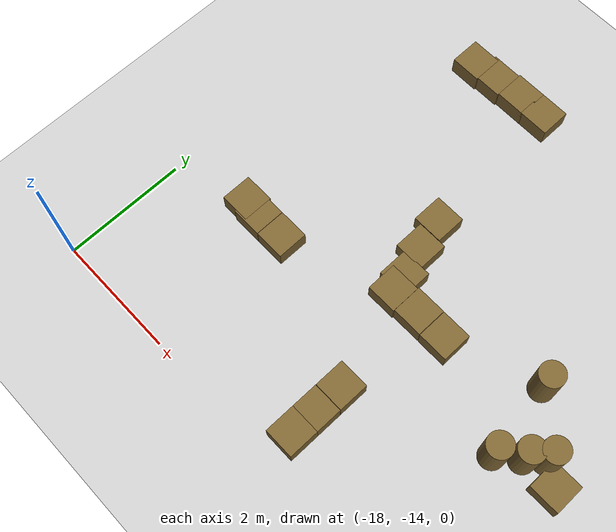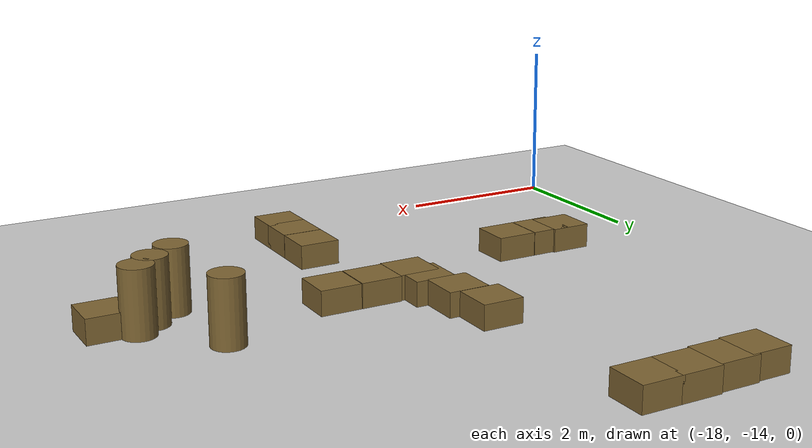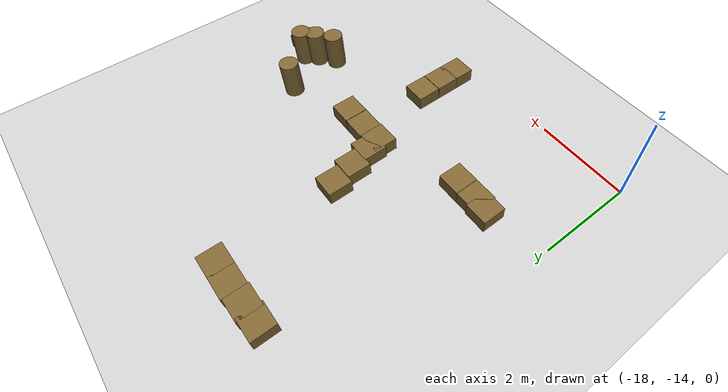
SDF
<sdf version="1.7">
 <world name="default">
  <model name="ground_plane">
   <static>1</static>
   <link name="link">
    <collision name="collision">
     <geometry><plane><normal>0 0 1</normal><size>100 100</size></plane></geometry>
     <surface><friction><ode><mu>100</mu><mu2>50</mu2></ode></friction></surface>
    </collision>
    <visual name="visual">
     <cast_shadows>0</cast_shadows>
     <geometry><plane><normal>0 0 1</normal><size>100 100</size></plane></geometry>
     <material>
      <script><uri>file://media/materials/scripts/gazebo.material</uri><name>Gazebo/Grey</name></script>
     </material>
    </visual>
   </link>
  </model>
  <model name="mini_box_clone_clone_3_clone_0_clone">
   <link name="link">
    <inertial>
     <mass>1</mass>
     <inertia>
      <ixx>0.166667</ixx>
      <ixy>0</ixy>
      <ixz>0</ixz>
      <iyy>0.166667</iyy>
      <iyz>0</iyz>
      <izz>0.166667</izz>
     </inertia>
    </inertial>
    <visual name="visual">
     <geometry><box><size>0.5 0.5 0.3</size></box></geometry>
     <material>
      <script><name>Gazebo/Grey</name><uri>file://media/materials/scripts/gazebo.material</uri></script>
      <shader type="vertex"><normal_map>__default__</normal_map></shader>
      <ambient>0.5 0.4 0.2 1</ambient>
      <diffuse>0.7 0.7 0.7 1</diffuse>
      <specular>0.01 0.01 0.01 1</specular>
      <emissive>0 0 0 1</emissive>
     </material>
    </visual>
    <collision name="collision">
     <geometry><box><size>0.5 0.5 0.3</size></box></geometry>
     <surface>
      <friction>
       <ode><mu>1</mu><mu2>1</mu2><fdir1>0 0 0</fdir1><slip1>0</slip1><slip2>0</slip2></ode>
       <torsional>
        <coefficient>1</coefficient>
        <patch_radius>0</patch_radius>
        <surface_radius>0</surface_radius>
        <use_patch_radius>1</use_patch_radius>
        <ode><slip>0</slip></ode>
       </torsional>
      </friction>
      <bounce><restitution_coefficient>0</restitution_coefficient><threshold>1e+06</threshold></bounce>
      <contact>
       <collide_without_contact>0</collide_without_contact>
       <collide_without_contact_bitmask>1</collide_without_contact_bitmask>
       <collide_bitmask>1</collide_bitmask>
       <ode>
        <soft_cfm>0</soft_cfm>
        <soft_erp>0.2</soft_erp>
        <kp>1e+13</kp>
        <kd>1</kd>
        <max_vel>0.01</max_vel>
        <min_depth>0</min_depth>
       </ode>
       <bullet>
        <split_impulse>1</split_impulse>
        <split_impulse_penetration_threshold>-0.01</split_impulse_penetration_threshold>
        <soft_cfm>0</soft_cfm>
        <soft_erp>0.2</soft_erp>
        <kp>1e+13</kp>
        <kd>1</kd>
       </bullet>
      </contact>
     </surface>
    </collision>
   </link>
   <static>1</static>
   <pose>-14.5289 -9.75447 0.15 0 -0 0</pose>
  </model>
  <model name="mini_box_clone_clone_3_clone_0_clone_0">
   <link name="link">
    <inertial>
     <mass>1</mass>
     <inertia>
      <ixx>0.166667</ixx>
      <ixy>0</ixy>
      <ixz>0</ixz>
      <iyy>0.166667</iyy>
      <iyz>0</iyz>
      <izz>0.166667</izz>
     </inertia>
    </inertial>
    <visual name="visual">
     <geometry><box><size>0.5 0.5 0.3</size></box></geometry>
     <material>
      <script><name>Gazebo/Grey</name><uri>file://media/materials/scripts/gazebo.material</uri></script>
      <shader type="vertex"><normal_map>__default__</normal_map></shader>
      <ambient>0.5 0.4 0.2 1</ambient>
      <diffuse>0.7 0.7 0.7 1</diffuse>
      <specular>0.01 0.01 0.01 1</specular>
      <emissive>0 0 0 1</emissive>
     </material>
    </visual>
    <collision name="collision">
     <geometry><box><size>0.5 0.5 0.3</size></box></geometry>
     <surface>
      <friction>
       <ode><mu>1</mu><mu2>1</mu2><fdir1>0 0 0</fdir1><slip1>0</slip1><slip2>0</slip2></ode>
       <torsional>
        <coefficient>1</coefficient>
        <patch_radius>0</patch_radius>
        <surface_radius>0</surface_radius>
        <use_patch_radius>1</use_patch_radius>
        <ode><slip>0</slip></ode>
       </torsional>
      </friction>
      <bounce><restitution_coefficient>0</restitution_coefficient><threshold>1e+06</threshold></bounce>
      <contact>
       <collide_without_contact>0</collide_without_contact>
       <collide_without_contact_bitmask>1</collide_without_contact_bitmask>
       <collide_bitmask>1</collide_bitmask>
       <ode>
        <soft_cfm>0</soft_cfm>
        <soft_erp>0.2</soft_erp>
        <kp>1e+13</kp>
        <kd>1</kd>
        <max_vel>0.01</max_vel>
        <min_depth>0</min_depth>
       </ode>
       <bullet>
        <split_impulse>1</split_impulse>
        <split_impulse_penetration_threshold>-0.01</split_impulse_penetration_threshold>
        <soft_cfm>0</soft_cfm>
        <soft_erp>0.2</soft_erp>
        <kp>1e+13</kp>
        <kd>1</kd>
       </bullet>
      </contact>
     </surface>
    </collision>
   </link>
   <static>1</static>
   <pose>-13.2069 -11.003 0.15 0 -0 0</pose>
  </model>
  <model name="mini_box_clone_clone_3_clone_0_clone_clone">
   <link name="link">
    <inertial>
     <mass>1</mass>
     <inertia>
      <ixx>0.166667</ixx>
      <ixy>0</ixy>
      <ixz>0</ixz>
      <iyy>0.166667</iyy>
      <iyz>0</iyz>
      <izz>0.166667</izz>
     </inertia>
    </inertial>
    <visual name="visual">
     <geometry><box><size>0.5 0.5 0.3</size></box></geometry>
     <material>
      <script><name>Gazebo/Grey</name><uri>file://media/materials/scripts/gazebo.material</uri></script>
      <shader type="vertex"><normal_map>__default__</normal_map></shader>
      <ambient>0.5 0.4 0.2 1</ambient>
      <diffuse>0.7 0.7 0.7 1</diffuse>
      <specular>0.01 0.01 0.01 1</specular>
      <emissive>0 0 0 1</emissive>
     </material>
    </visual>
    <collision name="collision">
     <geometry><box><size>0.5 0.5 0.3</size></box></geometry>
     <surface>
      <friction>
       <ode><mu>1</mu><mu2>1</mu2><fdir1>0 0 0</fdir1><slip1>0</slip1><slip2>0</slip2></ode>
       <torsional>
        <coefficient>1</coefficient>
        <patch_radius>0</patch_radius>
        <surface_radius>0</surface_radius>
        <use_patch_radius>1</use_patch_radius>
        <ode><slip>0</slip></ode>
       </torsional>
      </friction>
      <bounce><restitution_coefficient>0</restitution_coefficient><threshold>1e+06</threshold></bounce>
      <contact>
       <collide_without_contact>0</collide_without_contact>
       <collide_without_contact_bitmask>1</collide_without_contact_bitmask>
       <collide_bitmask>1</collide_bitmask>
       <ode>
        <soft_cfm>0</soft_cfm>
        <soft_erp>0.2</soft_erp>
        <kp>1e+13</kp>
        <kd>1</kd>
        <max_vel>0.01</max_vel>
        <min_depth>0</min_depth>
       </ode>
       <bullet>
        <split_impulse>1</split_impulse>
        <split_impulse_penetration_threshold>-0.01</split_impulse_penetration_threshold>
        <soft_cfm>0</soft_cfm>
        <soft_erp>0.2</soft_erp>
        <kp>1e+13</kp>
        <kd>1</kd>
       </bullet>
      </contact>
     </surface>
    </collision>
   </link>
   <static>1</static>
   <pose>-14.4092 -10.2616 0.15 0 -0 0</pose>
  </model>
  <model name="mini_box_clone_clone_3_clone_0_clone_clone_0">
   <link name="link">
    <inertial>
     <mass>1</mass>
     <inertia>
      <ixx>0.166667</ixx>
      <ixy>0</ixy>
      <ixz>0</ixz>
      <iyy>0.166667</iyy>
      <iyz>0</iyz>
      <izz>0.166667</izz>
     </inertia>
    </inertial>
    <visual name="visual">
     <geometry><box><size>0.5 0.5 0.3</size></box></geometry>
     <material>
      <script><name>Gazebo/Grey</name><uri>file://media/materials/scripts/gazebo.material</uri></script>
      <shader type="vertex"><normal_map>__default__</normal_map></shader>
      <ambient>0.5 0.4 0.2 1</ambient>
      <diffuse>0.7 0.7 0.7 1</diffuse>
      <specular>0.01 0.01 0.01 1</specular>
      <emissive>0 0 0 1</emissive>
     </material>
    </visual>
    <collision name="collision">
     <geometry><box><size>0.5 0.5 0.3</size></box></geometry>
     <surface>
      <friction>
       <ode><mu>1</mu><mu2>1</mu2><fdir1>0 0 0</fdir1><slip1>0</slip1><slip2>0</slip2></ode>
       <torsional>
        <coefficient>1</coefficient>
        <patch_radius>0</patch_radius>
        <surface_radius>0</surface_radius>
        <use_patch_radius>1</use_patch_radius>
        <ode><slip>0</slip></ode>
       </torsional>
      </friction>
      <bounce><restitution_coefficient>0</restitution_coefficient><threshold>1e+06</threshold></bounce>
      <contact>
       <collide_without_contact>0</collide_without_contact>
       <collide_without_contact_bitmask>1</collide_without_contact_bitmask>
       <collide_bitmask>1</collide_bitmask>
       <ode>
        <soft_cfm>0</soft_cfm>
        <soft_erp>0.2</soft_erp>
        <kp>1e+13</kp>
        <kd>1</kd>
        <max_vel>0.01</max_vel>
        <min_depth>0</min_depth>
       </ode>
       <bullet>
        <split_impulse>1</split_impulse>
        <split_impulse_penetration_threshold>-0.01</split_impulse_penetration_threshold>
        <soft_cfm>0</soft_cfm>
        <soft_erp>0.2</soft_erp>
        <kp>1e+13</kp>
        <kd>1</kd>
       </bullet>
      </contact>
     </surface>
    </collision>
   </link>
   <static>1</static>
   <pose>-14.2657 -10.7418 0.15 0 -0 0</pose>
  </model>
  <model name="mini_box_clone_clone_3_clone_0_clone_clone_1">
   <link name="link">
    <inertial>
     <mass>1</mass>
     <inertia>
      <ixx>0.166667</ixx>
      <ixy>0</ixy>
      <ixz>0</ixz>
      <iyy>0.166667</iyy>
      <iyz>0</iyz>
      <izz>0.166667</izz>
     </inertia>
    </inertial>
    <visual name="visual">
     <geometry><box><size>0.5 0.5 0.3</size></box></geometry>
     <material>
      <script><name>Gazebo/Grey</name><uri>file://media/materials/scripts/gazebo.material</uri></script>
      <shader type="vertex"><normal_map>__default__</normal_map></shader>
      <ambient>0.5 0.4 0.2 1</ambient>
      <diffuse>0.7 0.7 0.7 1</diffuse>
      <specular>0.01 0.01 0.01 1</specular>
      <emissive>0 0 0 1</emissive>
     </material>
    </visual>
    <collision name="collision">
     <geometry><box><size>0.5 0.5 0.3</size></box></geometry>
     <surface>
      <friction>
       <ode><mu>1</mu><mu2>1</mu2><fdir1>0 0 0</fdir1><slip1>0</slip1><slip2>0</slip2></ode>
       <torsional>
        <coefficient>1</coefficient>
        <patch_radius>0</patch_radius>
        <surface_radius>0</surface_radius>
        <use_patch_radius>1</use_patch_radius>
        <ode><slip>0</slip></ode>
       </torsional>
      </friction>
      <bounce><restitution_coefficient>0</restitution_coefficient><threshold>1e+06</threshold></bounce>
      <contact>
       <collide_without_contact>0</collide_without_contact>
       <collide_without_contact_bitmask>1</collide_without_contact_bitmask>
       <collide_bitmask>1</collide_bitmask>
       <ode>
        <soft_cfm>0</soft_cfm>
        <soft_erp>0.2</soft_erp>
        <kp>1e+13</kp>
        <kd>1</kd>
        <max_vel>0.01</max_vel>
        <min_depth>0</min_depth>
       </ode>
       <bullet>
        <split_impulse>1</split_impulse>
        <split_impulse_penetration_threshold>-0.01</split_impulse_penetration_threshold>
        <soft_cfm>0</soft_cfm>
        <soft_erp>0.2</soft_erp>
        <kp>1e+13</kp>
        <kd>1</kd>
       </bullet>
      </contact>
     </surface>
    </collision>
   </link>
   <static>1</static>
   <pose>-13.7158 -11.0017 0.15 0 -0 0</pose>
  </model>
  <model name="mini_cylinder_0_clone_0_clone_0_clone_11">
   <link name="link">
    <inertial>
     <mass>1</mass>
     <inertia><ixx>0.145833</ixx><ixy>0</ixy><ixz>0</ixz><iyy>0.145833</iyy><iyz>0</iyz><izz>0.125</izz></inertia>
    </inertial>
    <visual name="visual">
     <geometry><cylinder><radius>0.2</radius><length>0.8</length></cylinder></geometry>
     <material>
      <script><name>Gazebo/Grey</name><uri>file://media/materials/scripts/gazebo.material</uri></script>
      <shader type="vertex"><normal_map>__default__</normal_map></shader>
      <ambient>0.5 0.4 0.2 1</ambient>
      <diffuse>0.7 0.7 0.7 1</diffuse>
      <specular>0.01 0.01 0.01 1</specular>
      <emissive>0 0 0 1</emissive>
     </material>
    </visual>
    <collision name="collision">
     <geometry><cylinder><radius>0.2</radius><length>0.8</length></cylinder></geometry>
     <surface>
      <friction>
       <ode><mu>1</mu><mu2>1</mu2><fdir1>0 0 0</fdir1><slip1>0</slip1><slip2>0</slip2></ode>
       <torsional>
        <coefficient>1</coefficient>
        <patch_radius>0</patch_radius>
        <surface_radius>0</surface_radius>
        <use_patch_radius>1</use_patch_radius>
        <ode><slip>0</slip></ode>
       </torsional>
      </friction>
      <bounce><restitution_coefficient>0</restitution_coefficient><threshold>1e+06</threshold></bounce>
      <contact>
       <collide_without_contact>0</collide_without_contact>
       <collide_without_contact_bitmask>1</collide_without_contact_bitmask>
       <collide_bitmask>1</collide_bitmask>
       <ode>
        <soft_cfm>0</soft_cfm>
        <soft_erp>0.2</soft_erp>
        <kp>1e+13</kp>
        <kd>1</kd>
        <max_vel>0.01</max_vel>
        <min_depth>0</min_depth>
       </ode>
       <bullet>
        <split_impulse>1</split_impulse>
        <split_impulse_penetration_threshold>-0.01</split_impulse_penetration_threshold>
        <soft_cfm>0</soft_cfm>
        <soft_erp>0.2</soft_erp>
        <kp>1e+13</kp>
        <kd>1</kd>
       </bullet>
      </contact>
     </surface>
    </collision>
   </link>
   <static>1</static>
   <pose>-11.7615 -10.493 0.4 0 -0 0</pose>
  </model>
  <model name="mini_cylinder_0_clone_0_clone_0_clone_12">
   <link name="link">
    <inertial>
     <mass>1</mass>
     <inertia><ixx>0.145833</ixx><ixy>0</ixy><ixz>0</ixz><iyy>0.145833</iyy><iyz>0</iyz><izz>0.125</izz></inertia>
    </inertial>
    <visual name="visual">
     <geometry><cylinder><radius>0.2</radius><length>0.8</length></cylinder></geometry>
     <material>
      <script><name>Gazebo/Grey</name><uri>file://media/materials/scripts/gazebo.material</uri></script>
      <shader type="vertex"><normal_map>__default__</normal_map></shader>
      <ambient>0.5 0.4 0.2 1</ambient>
      <diffuse>0.7 0.7 0.7 1</diffuse>
      <specular>0.01 0.01 0.01 1</specular>
      <emissive>0 0 0 1</emissive>
     </material>
    </visual>
    <collision name="collision">
     <geometry><cylinder><radius>0.2</radius><length>0.8</length></cylinder></geometry>
     <surface>
      <friction>
       <ode><mu>1</mu><mu2>1</mu2><fdir1>0 0 0</fdir1><slip1>0</slip1><slip2>0</slip2></ode>
       <torsional>
        <coefficient>1</coefficient>
        <patch_radius>0</patch_radius>
        <surface_radius>0</surface_radius>
        <use_patch_radius>1</use_patch_radius>
        <ode><slip>0</slip></ode>
       </torsional>
      </friction>
      <bounce><restitution_coefficient>0</restitution_coefficient><threshold>1e+06</threshold></bounce>
      <contact>
       <collide_without_contact>0</collide_without_contact>
       <collide_without_contact_bitmask>1</collide_without_contact_bitmask>
       <collide_bitmask>1</collide_bitmask>
       <ode>
        <soft_cfm>0</soft_cfm>
        <soft_erp>0.2</soft_erp>
        <kp>1e+13</kp>
        <kd>1</kd>
        <max_vel>0.01</max_vel>
        <min_depth>0</min_depth>
       </ode>
       <bullet>
        <split_impulse>1</split_impulse>
        <split_impulse_penetration_threshold>-0.01</split_impulse_penetration_threshold>
        <soft_cfm>0</soft_cfm>
        <soft_erp>0.2</soft_erp>
        <kp>1e+13</kp>
        <kd>1</kd>
       </bullet>
      </contact>
     </surface>
    </collision>
   </link>
   <static>1</static>
   <pose>-11.27 -11.443 0.4 0 -0 0</pose>
  </model>
  <model name="mini_cylinder_0_clone_0_clone_0_clone_13">
   <link name="link">
    <inertial>
     <mass>1</mass>
     <inertia><ixx>0.145833</ixx><ixy>0</ixy><ixz>0</ixz><iyy>0.145833</iyy><iyz>0</iyz><izz>0.125</izz></inertia>
    </inertial>
    <visual name="visual">
     <geometry><cylinder><radius>0.2</radius><length>0.8</length></cylinder></geometry>
     <material>
      <script><name>Gazebo/Grey</name><uri>file://media/materials/scripts/gazebo.material</uri></script>
      <shader type="vertex"><normal_map>__default__</normal_map></shader>
      <ambient>0.5 0.4 0.2 1</ambient>
      <diffuse>0.7 0.7 0.7 1</diffuse>
      <specular>0.01 0.01 0.01 1</specular>
      <emissive>0 0 0 1</emissive>
     </material>
    </visual>
    <collision name="collision">
     <geometry><cylinder><radius>0.2</radius><length>0.8</length></cylinder></geometry>
     <surface>
      <friction>
       <ode><mu>1</mu><mu2>1</mu2><fdir1>0 0 0</fdir1><slip1>0</slip1><slip2>0</slip2></ode>
       <torsional>
        <coefficient>1</coefficient>
        <patch_radius>0</patch_radius>
        <surface_radius>0</surface_radius>
        <use_patch_radius>1</use_patch_radius>
        <ode><slip>0</slip></ode>
       </torsional>
      </friction>
      <bounce><restitution_coefficient>0</restitution_coefficient><threshold>1e+06</threshold></bounce>
      <contact>
       <collide_without_contact>0</collide_without_contact>
       <collide_without_contact_bitmask>1</collide_without_contact_bitmask>
       <collide_bitmask>1</collide_bitmask>
       <ode>
        <soft_cfm>0</soft_cfm>
        <soft_erp>0.2</soft_erp>
        <kp>1e+13</kp>
        <kd>1</kd>
        <max_vel>0.01</max_vel>
        <min_depth>0</min_depth>
       </ode>
       <bullet>
        <split_impulse>1</split_impulse>
        <split_impulse_penetration_threshold>-0.01</split_impulse_penetration_threshold>
        <soft_cfm>0</soft_cfm>
        <soft_erp>0.2</soft_erp>
        <kp>1e+13</kp>
        <kd>1</kd>
       </bullet>
      </contact>
     </surface>
    </collision>
   </link>
   <static>1</static>
   <pose>-11.0407 -11.2139 0.4 0 -0 0</pose>
  </model>
  <model name="mini_cylinder_0_clone_0_clone_0_clone_14">
   <link name="link">
    <inertial>
     <mass>1</mass>
     <inertia><ixx>0.145833</ixx><ixy>0</ixy><ixz>0</ixz><iyy>0.145833</iyy><iyz>0</iyz><izz>0.125</izz></inertia>
    </inertial>
    <visual name="visual">
     <geometry><cylinder><radius>0.2</radius><length>0.8</length></cylinder></geometry>
     <material>
      <script><name>Gazebo/Grey</name><uri>file://media/materials/scripts/gazebo.material</uri></script>
      <shader type="vertex"><normal_map>__default__</normal_map></shader>
      <ambient>0.5 0.4 0.2 1</ambient>
      <diffuse>0.7 0.7 0.7 1</diffuse>
      <specular>0.01 0.01 0.01 1</specular>
      <emissive>0 0 0 1</emissive>
     </material>
    </visual>
    <collision name="collision">
     <geometry><cylinder><radius>0.2</radius><length>0.8</length></cylinder></geometry>
     <surface>
      <friction>
       <ode><mu>1</mu><mu2>1</mu2><fdir1>0 0 0</fdir1><slip1>0</slip1><slip2>0</slip2></ode>
       <torsional>
        <coefficient>1</coefficient>
        <patch_radius>0</patch_radius>
        <surface_radius>0</surface_radius>
        <use_patch_radius>1</use_patch_radius>
        <ode><slip>0</slip></ode>
       </torsional>
      </friction>
      <bounce><restitution_coefficient>0</restitution_coefficient><threshold>1e+06</threshold></bounce>
      <contact>
       <collide_without_contact>0</collide_without_contact>
       <collide_without_contact_bitmask>1</collide_without_contact_bitmask>
       <collide_bitmask>1</collide_bitmask>
       <ode>
        <soft_cfm>0</soft_cfm>
        <soft_erp>0.2</soft_erp>
        <kp>1e+13</kp>
        <kd>1</kd>
        <max_vel>0.01</max_vel>
        <min_depth>0</min_depth>
       </ode>
       <bullet>
        <split_impulse>1</split_impulse>
        <split_impulse_penetration_threshold>-0.01</split_impulse_penetration_threshold>
        <soft_cfm>0</soft_cfm>
        <soft_erp>0.2</soft_erp>
        <kp>1e+13</kp>
        <kd>1</kd>
       </bullet>
      </contact>
     </surface>
    </collision>
   </link>
   <static>1</static>
   <pose>-11.5976 -11.7054 0.4 0 -0 0</pose>
  </model>
  <model name="mini_box_clone_clone_3_clone_0_clone_0_clone_10">
   <link name="link">
    <inertial>
     <mass>1</mass>
     <inertia>
      <ixx>0.166667</ixx>
      <ixy>0</ixy>
      <ixz>0</ixz>
      <iyy>0.166667</iyy>
      <iyz>0</iyz>
      <izz>0.166667</izz>
     </inertia>
    </inertial>
    <visual name="visual">
     <geometry><box><size>0.5 0.5 0.3</size></box></geometry>
     <material>
      <script><name>Gazebo/Grey</name><uri>file://media/materials/scripts/gazebo.material</uri></script>
      <shader type="vertex"><normal_map>__default__</normal_map></shader>
      <ambient>0.5 0.4 0.2 1</ambient>
      <diffuse>0.7 0.7 0.7 1</diffuse>
      <specular>0.01 0.01 0.01 1</specular>
      <emissive>0 0 0 1</emissive>
     </material>
    </visual>
    <collision name="collision">
     <geometry><box><size>0.5 0.5 0.3</size></box></geometry>
     <surface>
      <friction>
       <ode><mu>1</mu><mu2>1</mu2><fdir1>0 0 0</fdir1><slip1>0</slip1><slip2>0</slip2></ode>
       <torsional>
        <coefficient>1</coefficient>
        <patch_radius>0</patch_radius>
        <surface_radius>0</surface_radius>
        <use_patch_radius>1</use_patch_radius>
        <ode><slip>0</slip></ode>
       </torsional>
      </friction>
      <bounce><restitution_coefficient>0</restitution_coefficient><threshold>1e+06</threshold></bounce>
      <contact>
       <collide_without_contact>0</collide_without_contact>
       <collide_without_contact_bitmask>1</collide_without_contact_bitmask>
       <collide_bitmask>1</collide_bitmask>
       <ode>
        <soft_cfm>0</soft_cfm>
        <soft_erp>0.2</soft_erp>
        <kp>1e+13</kp>
        <kd>1</kd>
        <max_vel>0.01</max_vel>
        <min_depth>0</min_depth>
       </ode>
       <bullet>
        <split_impulse>1</split_impulse>
        <split_impulse_penetration_threshold>-0.01</split_impulse_penetration_threshold>
        <soft_cfm>0</soft_cfm>
        <soft_erp>0.2</soft_erp>
        <kp>1e+13</kp>
        <kd>1</kd>
       </bullet>
      </contact>
     </surface>
    </collision>
   </link>
   <static>1</static>
   <pose>-10.7131 -11.443 0.15 0 -0 0</pose>
  </model>
  <model name="mini_box_clone_clone_0_clone_55">
   <link name="link">
    <inertial>
     <mass>1</mass>
     <inertia>
      <ixx>0.166667</ixx>
      <ixy>0</ixy>
      <ixz>0</ixz>
      <iyy>0.166667</iyy>
      <iyz>0</iyz>
      <izz>0.166667</izz>
     </inertia>
    </inertial>
    <visual name="visual">
     <geometry><box><size>0.5 0.5 0.3</size></box></geometry>
     <material>
      <script><name>Gazebo/Grey</name><uri>file://media/materials/scripts/gazebo.material</uri></script>
      <shader type="vertex"><normal_map>__default__</normal_map></shader>
      <ambient>0.5 0.4 0.2 1</ambient>
      <diffuse>0.7 0.7 0.7 1</diffuse>
      <specular>0.01 0.01 0.01 1</specular>
      <emissive>0 0 0 1</emissive>
     </material>
    </visual>
    <collision name="collision">
     <geometry><box><size>0.5 0.5 0.3</size></box></geometry>
     <surface>
      <friction>
       <ode><mu>1</mu><mu2>1</mu2><fdir1>0 0 0</fdir1><slip1>0</slip1><slip2>0</slip2></ode>
       <torsional>
        <coefficient>1</coefficient>
        <patch_radius>0</patch_radius>
        <surface_radius>0</surface_radius>
        <use_patch_radius>1</use_patch_radius>
        <ode><slip>0</slip></ode>
       </torsional>
      </friction>
      <bounce><restitution_coefficient>0</restitution_coefficient><threshold>1e+06</threshold></bounce>
      <contact>
       <collide_without_contact>0</collide_without_contact>
       <collide_without_contact_bitmask>1</collide_without_contact_bitmask>
       <collide_bitmask>1</collide_bitmask>
       <ode>
        <soft_cfm>0</soft_cfm>
        <soft_erp>0.2</soft_erp>
        <kp>1e+13</kp>
        <kd>1</kd>
        <max_vel>0.01</max_vel>
        <min_depth>0</min_depth>
       </ode>
       <bullet>
        <split_impulse>1</split_impulse>
        <split_impulse_penetration_threshold>-0.01</split_impulse_penetration_threshold>
        <soft_cfm>0</soft_cfm>
        <soft_erp>0.2</soft_erp>
        <kp>1e+13</kp>
        <kd>1</kd>
       </bullet>
      </contact>
     </surface>
    </collision>
   </link>
   <static>1</static>
   <pose>-16.0572 -7.3162 0.15 0 -0 0</pose>
  </model>
  <model name="mini_box_clone_clone_0_clone_61">
   <link name="link">
    <inertial>
     <mass>1</mass>
     <inertia>
      <ixx>0.166667</ixx>
      <ixy>0</ixy>
      <ixz>0</ixz>
      <iyy>0.166667</iyy>
      <iyz>0</iyz>
      <izz>0.166667</izz>
     </inertia>
    </inertial>
    <visual name="visual">
     <geometry><box><size>0.5 0.5 0.3</size></box></geometry>
     <material>
      <script><name>Gazebo/Grey</name><uri>file://media/materials/scripts/gazebo.material</uri></script>
      <shader type="vertex"><normal_map>__default__</normal_map></shader>
      <ambient>0.5 0.4 0.2 1</ambient>
      <diffuse>0.7 0.7 0.7 1</diffuse>
      <specular>0.01 0.01 0.01 1</specular>
      <emissive>0 0 0 1</emissive>
     </material>
    </visual>
    <collision name="collision">
     <geometry><box><size>0.5 0.5 0.3</size></box></geometry>
     <surface>
      <friction>
       <ode><mu>1</mu><mu2>1</mu2><fdir1>0 0 0</fdir1><slip1>0</slip1><slip2>0</slip2></ode>
       <torsional>
        <coefficient>1</coefficient>
        <patch_radius>0</patch_radius>
        <surface_radius>0</surface_radius>
        <use_patch_radius>1</use_patch_radius>
        <ode><slip>0</slip></ode>
       </torsional>
      </friction>
      <bounce><restitution_coefficient>0</restitution_coefficient><threshold>1e+06</threshold></bounce>
      <contact>
       <collide_without_contact>0</collide_without_contact>
       <collide_without_contact_bitmask>1</collide_without_contact_bitmask>
       <collide_bitmask>1</collide_bitmask>
       <ode>
        <soft_cfm>0</soft_cfm>
        <soft_erp>0.2</soft_erp>
        <kp>1e+13</kp>
        <kd>1</kd>
        <max_vel>0.01</max_vel>
        <min_depth>0</min_depth>
       </ode>
       <bullet>
        <split_impulse>1</split_impulse>
        <split_impulse_penetration_threshold>-0.01</split_impulse_penetration_threshold>
        <soft_cfm>0</soft_cfm>
        <soft_erp>0.2</soft_erp>
        <kp>1e+13</kp>
        <kd>1</kd>
       </bullet>
      </contact>
     </surface>
    </collision>
   </link>
   <static>1</static>
   <pose>-14.6648 -7.2666 0.15 0 -0 0</pose>
  </model>
  <model name="mini_box_clone_clone_0_clone_62">
   <link name="link">
    <inertial>
     <mass>1</mass>
     <inertia>
      <ixx>0.166667</ixx>
      <ixy>0</ixy>
      <ixz>0</ixz>
      <iyy>0.166667</iyy>
      <iyz>0</iyz>
      <izz>0.166667</izz>
     </inertia>
    </inertial>
    <visual name="visual">
     <geometry><box><size>0.5 0.5 0.3</size></box></geometry>
     <material>
      <script><name>Gazebo/Grey</name><uri>file://media/materials/scripts/gazebo.material</uri></script>
      <shader type="vertex"><normal_map>__default__</normal_map></shader>
      <ambient>0.5 0.4 0.2 1</ambient>
      <diffuse>0.7 0.7 0.7 1</diffuse>
      <specular>0.01 0.01 0.01 1</specular>
      <emissive>0 0 0 1</emissive>
     </material>
    </visual>
    <collision name="collision">
     <geometry><box><size>0.5 0.5 0.3</size></box></geometry>
     <surface>
      <friction>
       <ode><mu>1</mu><mu2>1</mu2><fdir1>0 0 0</fdir1><slip1>0</slip1><slip2>0</slip2></ode>
       <torsional>
        <coefficient>1</coefficient>
        <patch_radius>0</patch_radius>
        <surface_radius>0</surface_radius>
        <use_patch_radius>1</use_patch_radius>
        <ode><slip>0</slip></ode>
       </torsional>
      </friction>
      <bounce><restitution_coefficient>0</restitution_coefficient><threshold>1e+06</threshold></bounce>
      <contact>
       <collide_without_contact>0</collide_without_contact>
       <collide_without_contact_bitmask>1</collide_without_contact_bitmask>
       <collide_bitmask>1</collide_bitmask>
       <ode>
        <soft_cfm>0</soft_cfm>
        <soft_erp>0.2</soft_erp>
        <kp>1e+13</kp>
        <kd>1</kd>
        <max_vel>0.01</max_vel>
        <min_depth>0</min_depth>
       </ode>
       <bullet>
        <split_impulse>1</split_impulse>
        <split_impulse_penetration_threshold>-0.01</split_impulse_penetration_threshold>
        <soft_cfm>0</soft_cfm>
        <soft_erp>0.2</soft_erp>
        <kp>1e+13</kp>
        <kd>1</kd>
       </bullet>
      </contact>
     </surface>
    </collision>
   </link>
   <static>1</static>
   <pose>-15.1375 -7.2666 0.15 0 -0 0</pose>
  </model>
  <model name="mini_box_clone_clone_0_clone_63">
   <link name="link">
    <inertial>
     <mass>1</mass>
     <inertia>
      <ixx>0.166667</ixx>
      <ixy>0</ixy>
      <ixz>0</ixz>
      <iyy>0.166667</iyy>
      <iyz>0</iyz>
      <izz>0.166667</izz>
     </inertia>
    </inertial>
    <visual name="visual">
     <geometry><box><size>0.5 0.5 0.3</size></box></geometry>
     <material>
      <script><name>Gazebo/Grey</name><uri>file://media/materials/scripts/gazebo.material</uri></script>
      <shader type="vertex"><normal_map>__default__</normal_map></shader>
      <ambient>0.5 0.4 0.2 1</ambient>
      <diffuse>0.7 0.7 0.7 1</diffuse>
      <specular>0.01 0.01 0.01 1</specular>
      <emissive>0 0 0 1</emissive>
     </material>
    </visual>
    <collision name="collision">
     <geometry><box><size>0.5 0.5 0.3</size></box></geometry>
     <surface>
      <friction>
       <ode><mu>1</mu><mu2>1</mu2><fdir1>0 0 0</fdir1><slip1>0</slip1><slip2>0</slip2></ode>
       <torsional>
        <coefficient>1</coefficient>
        <patch_radius>0</patch_radius>
        <surface_radius>0</surface_radius>
        <use_patch_radius>1</use_patch_radius>
        <ode><slip>0</slip></ode>
       </torsional>
      </friction>
      <bounce><restitution_coefficient>0</restitution_coefficient><threshold>1e+06</threshold></bounce>
      <contact>
       <collide_without_contact>0</collide_without_contact>
       <collide_without_contact_bitmask>1</collide_without_contact_bitmask>
       <collide_bitmask>1</collide_bitmask>
       <ode>
        <soft_cfm>0</soft_cfm>
        <soft_erp>0.2</soft_erp>
        <kp>1e+13</kp>
        <kd>1</kd>
        <max_vel>0.01</max_vel>
        <min_depth>0</min_depth>
       </ode>
       <bullet>
        <split_impulse>1</split_impulse>
        <split_impulse_penetration_threshold>-0.01</split_impulse_penetration_threshold>
        <soft_cfm>0</soft_cfm>
        <soft_erp>0.2</soft_erp>
        <kp>1e+13</kp>
        <kd>1</kd>
       </bullet>
      </contact>
     </surface>
    </collision>
   </link>
   <static>1</static>
   <pose>-15.6348 -7.29188 0.15 0 -0 0</pose>
  </model>
  <model name="mini_box_clone_clone_0_clone_64">
   <link name="link">
    <inertial>
     <mass>1</mass>
     <inertia>
      <ixx>0.166667</ixx>
      <ixy>0</ixy>
      <ixz>0</ixz>
      <iyy>0.166667</iyy>
      <iyz>0</iyz>
      <izz>0.166667</izz>
     </inertia>
    </inertial>
    <visual name="visual">
     <geometry><box><size>0.5 0.5 0.3</size></box></geometry>
     <material>
      <script><name>Gazebo/Grey</name><uri>file://media/materials/scripts/gazebo.material</uri></script>
      <shader type="vertex"><normal_map>__default__</normal_map></shader>
      <ambient>0.5 0.4 0.2 1</ambient>
      <diffuse>0.7 0.7 0.7 1</diffuse>
      <specular>0.01 0.01 0.01 1</specular>
      <emissive>0 0 0 1</emissive>
     </material>
    </visual>
    <collision name="collision">
     <geometry><box><size>0.5 0.5 0.3</size></box></geometry>
     <surface>
      <friction>
       <ode><mu>1</mu><mu2>1</mu2><fdir1>0 0 0</fdir1><slip1>0</slip1><slip2>0</slip2></ode>
       <torsional>
        <coefficient>1</coefficient>
        <patch_radius>0</patch_radius>
        <surface_radius>0</surface_radius>
        <use_patch_radius>1</use_patch_radius>
        <ode><slip>0</slip></ode>
       </torsional>
      </friction>
      <bounce><restitution_coefficient>0</restitution_coefficient><threshold>1e+06</threshold></bounce>
      <contact>
       <collide_without_contact>0</collide_without_contact>
       <collide_without_contact_bitmask>1</collide_without_contact_bitmask>
       <collide_bitmask>1</collide_bitmask>
       <ode>
        <soft_cfm>0</soft_cfm>
        <soft_erp>0.2</soft_erp>
        <kp>1e+13</kp>
        <kd>1</kd>
        <max_vel>0.01</max_vel>
        <min_depth>0</min_depth>
       </ode>
       <bullet>
        <split_impulse>1</split_impulse>
        <split_impulse_penetration_threshold>-0.01</split_impulse_penetration_threshold>
        <soft_cfm>0</soft_cfm>
        <soft_erp>0.2</soft_erp>
        <kp>1e+13</kp>
        <kd>1</kd>
       </bullet>
      </contact>
     </surface>
    </collision>
   </link>
   <static>1</static>
   <pose>-14.2172 -11.0218 0.15 0 -0 0</pose>
  </model>
  <model name="mini_box_clone_clone_0_clone_77">
   <link name="link">
    <inertial>
     <mass>1</mass>
     <inertia>
      <ixx>0.166667</ixx>
      <ixy>0</ixy>
      <ixz>0</ixz>
      <iyy>0.166667</iyy>
      <iyz>0</iyz>
      <izz>0.166667</izz>
     </inertia>
    </inertial>
    <visual name="visual">
     <geometry><box><size>0.5 0.5 0.3</size></box></geometry>
     <material>
      <script><name>Gazebo/Grey</name><uri>file://media/materials/scripts/gazebo.material</uri></script>
      <shader type="vertex"><normal_map>__default__</normal_map></shader>
      <ambient>0.5 0.4 0.2 1</ambient>
      <diffuse>0.7 0.7 0.7 1</diffuse>
      <specular>0.01 0.01 0.01 1</specular>
      <emissive>0 0 0 1</emissive>
     </material>
    </visual>
    <collision name="collision">
     <geometry><box><size>0.5 0.5 0.3</size></box></geometry>
     <surface>
      <friction>
       <ode><mu>1</mu><mu2>1</mu2><fdir1>0 0 0</fdir1><slip1>0</slip1><slip2>0</slip2></ode>
       <torsional>
        <coefficient>1</coefficient>
        <patch_radius>0</patch_radius>
        <surface_radius>0</surface_radius>
        <use_patch_radius>1</use_patch_radius>
        <ode><slip>0</slip></ode>
       </torsional>
      </friction>
      <bounce><restitution_coefficient>0</restitution_coefficient><threshold>1e+06</threshold></bounce>
      <contact>
       <collide_without_contact>0</collide_without_contact>
       <collide_without_contact_bitmask>1</collide_without_contact_bitmask>
       <collide_bitmask>1</collide_bitmask>
       <ode>
        <soft_cfm>0</soft_cfm>
        <soft_erp>0.2</soft_erp>
        <kp>1e+13</kp>
        <kd>1</kd>
        <max_vel>0.01</max_vel>
        <min_depth>0</min_depth>
       </ode>
       <bullet>
        <split_impulse>1</split_impulse>
        <split_impulse_penetration_threshold>-0.01</split_impulse_penetration_threshold>
        <soft_cfm>0</soft_cfm>
        <soft_erp>0.2</soft_erp>
        <kp>1e+13</kp>
        <kd>1</kd>
       </bullet>
      </contact>
     </surface>
    </collision>
   </link>
   <static>1</static>
   <pose>-15.9563 -11.6281 0.15 0 -0 0</pose>
  </model>
  <model name="mini_box_clone_clone_0_clone_78">
   <link name="link">
    <inertial>
     <mass>1</mass>
     <inertia>
      <ixx>0.166667</ixx>
      <ixy>0</ixy>
      <ixz>0</ixz>
      <iyy>0.166667</iyy>
      <iyz>0</iyz>
      <izz>0.166667</izz>
     </inertia>
    </inertial>
    <visual name="visual">
     <geometry><box><size>0.5 0.5 0.3</size></box></geometry>
     <material>
      <script><name>Gazebo/Grey</name><uri>file://media/materials/scripts/gazebo.material</uri></script>
      <shader type="vertex"><normal_map>__default__</normal_map></shader>
      <ambient>0.5 0.4 0.2 1</ambient>
      <diffuse>0.7 0.7 0.7 1</diffuse>
      <specular>0.01 0.01 0.01 1</specular>
      <emissive>0 0 0 1</emissive>
     </material>
    </visual>
    <collision name="collision">
     <geometry><box><size>0.5 0.5 0.3</size></box></geometry>
     <surface>
      <friction>
       <ode><mu>1</mu><mu2>1</mu2><fdir1>0 0 0</fdir1><slip1>0</slip1><slip2>0</slip2></ode>
       <torsional>
        <coefficient>1</coefficient>
        <patch_radius>0</patch_radius>
        <surface_radius>0</surface_radius>
        <use_patch_radius>1</use_patch_radius>
        <ode><slip>0</slip></ode>
       </torsional>
      </friction>
      <bounce><restitution_coefficient>0</restitution_coefficient><threshold>1e+06</threshold></bounce>
      <contact>
       <collide_without_contact>0</collide_without_contact>
       <collide_without_contact_bitmask>1</collide_without_contact_bitmask>
       <collide_bitmask>1</collide_bitmask>
       <ode>
        <soft_cfm>0</soft_cfm>
        <soft_erp>0.2</soft_erp>
        <kp>1e+13</kp>
        <kd>1</kd>
        <max_vel>0.01</max_vel>
        <min_depth>0</min_depth>
       </ode>
       <bullet>
        <split_impulse>1</split_impulse>
        <split_impulse_penetration_threshold>-0.01</split_impulse_penetration_threshold>
        <soft_cfm>0</soft_cfm>
        <soft_erp>0.2</soft_erp>
        <kp>1e+13</kp>
        <kd>1</kd>
       </bullet>
      </contact>
     </surface>
    </collision>
   </link>
   <static>1</static>
   <pose>-16.4616 -11.6281 0.15 0 -0 0</pose>
  </model>
  <model name="mini_box_clone_clone_0_clone_79">
   <link name="link">
    <inertial>
     <mass>1</mass>
     <inertia>
      <ixx>0.166667</ixx>
      <ixy>0</ixy>
      <ixz>0</ixz>
      <iyy>0.166667</iyy>
      <iyz>0</iyz>
      <izz>0.166667</izz>
     </inertia>
    </inertial>
    <visual name="visual">
     <geometry><box><size>0.5 0.5 0.3</size></box></geometry>
     <material>
      <script><name>Gazebo/Grey</name><uri>file://media/materials/scripts/gazebo.material</uri></script>
      <shader type="vertex"><normal_map>__default__</normal_map></shader>
      <ambient>0.5 0.4 0.2 1</ambient>
      <diffuse>0.7 0.7 0.7 1</diffuse>
      <specular>0.01 0.01 0.01 1</specular>
      <emissive>0 0 0 1</emissive>
     </material>
    </visual>
    <collision name="collision">
     <geometry><box><size>0.5 0.5 0.3</size></box></geometry>
     <surface>
      <friction>
       <ode><mu>1</mu><mu2>1</mu2><fdir1>0 0 0</fdir1><slip1>0</slip1><slip2>0</slip2></ode>
       <torsional>
        <coefficient>1</coefficient>
        <patch_radius>0</patch_radius>
        <surface_radius>0</surface_radius>
        <use_patch_radius>1</use_patch_radius>
        <ode><slip>0</slip></ode>
       </torsional>
      </friction>
      <bounce><restitution_coefficient>0</restitution_coefficient><threshold>1e+06</threshold></bounce>
      <contact>
       <collide_without_contact>0</collide_without_contact>
       <collide_without_contact_bitmask>1</collide_without_contact_bitmask>
       <collide_bitmask>1</collide_bitmask>
       <ode>
        <soft_cfm>0</soft_cfm>
        <soft_erp>0.2</soft_erp>
        <kp>1e+13</kp>
        <kd>1</kd>
        <max_vel>0.01</max_vel>
        <min_depth>0</min_depth>
       </ode>
       <bullet>
        <split_impulse>1</split_impulse>
        <split_impulse_penetration_threshold>-0.01</split_impulse_penetration_threshold>
        <soft_cfm>0</soft_cfm>
        <soft_erp>0.2</soft_erp>
        <kp>1e+13</kp>
        <kd>1</kd>
       </bullet>
      </contact>
     </surface>
    </collision>
   </link>
   <static>1</static>
   <pose>-16.7504 -11.6037 0.15 0 -0 0</pose>
  </model>
  <model name="mini_box_clone_clone_0_clone_80">
   <link name="link">
    <inertial>
     <mass>1</mass>
     <inertia>
      <ixx>0.166667</ixx>
      <ixy>0</ixy>
      <ixz>0</ixz>
      <iyy>0.166667</iyy>
      <iyz>0</iyz>
      <izz>0.166667</izz>
     </inertia>
    </inertial>
    <visual name="visual">
     <geometry><box><size>0.5 0.5 0.3</size></box></geometry>
     <material>
      <script><name>Gazebo/Grey</name><uri>file://media/materials/scripts/gazebo.material</uri></script>
      <shader type="vertex"><normal_map>__default__</normal_map></shader>
      <ambient>0.5 0.4 0.2 1</ambient>
      <diffuse>0.7 0.7 0.7 1</diffuse>
      <specular>0.01 0.01 0.01 1</specular>
      <emissive>0 0 0 1</emissive>
     </material>
    </visual>
    <collision name="collision">
     <geometry><box><size>0.5 0.5 0.3</size></box></geometry>
     <surface>
      <friction>
       <ode><mu>1</mu><mu2>1</mu2><fdir1>0 0 0</fdir1><slip1>0</slip1><slip2>0</slip2></ode>
       <torsional>
        <coefficient>1</coefficient>
        <patch_radius>0</patch_radius>
        <surface_radius>0</surface_radius>
        <use_patch_radius>1</use_patch_radius>
        <ode><slip>0</slip></ode>
       </torsional>
      </friction>
      <bounce><restitution_coefficient>0</restitution_coefficient><threshold>1e+06</threshold></bounce>
      <contact>
       <collide_without_contact>0</collide_without_contact>
       <collide_without_contact_bitmask>1</collide_without_contact_bitmask>
       <collide_bitmask>1</collide_bitmask>
       <ode>
        <soft_cfm>0</soft_cfm>
        <soft_erp>0.2</soft_erp>
        <kp>1e+13</kp>
        <kd>1</kd>
        <max_vel>0.01</max_vel>
        <min_depth>0</min_depth>
       </ode>
       <bullet>
        <split_impulse>1</split_impulse>
        <split_impulse_penetration_threshold>-0.01</split_impulse_penetration_threshold>
        <soft_cfm>0</soft_cfm>
        <soft_erp>0.2</soft_erp>
        <kp>1e+13</kp>
        <kd>1</kd>
       </bullet>
      </contact>
     </surface>
    </collision>
   </link>
   <static>1</static>
   <pose>-13.6948 -12.5665 0.15 0 -0 0</pose>
  </model>
  <model name="mini_box_clone_clone_0_clone_81">
   <link name="link">
    <inertial>
     <mass>1</mass>
     <inertia>
      <ixx>0.166667</ixx>
      <ixy>0</ixy>
      <ixz>0</ixz>
      <iyy>0.166667</iyy>
      <iyz>0</iyz>
      <izz>0.166667</izz>
     </inertia>
    </inertial>
    <visual name="visual">
     <geometry><box><size>0.5 0.5 0.3</size></box></geometry>
     <material>
      <script><name>Gazebo/Grey</name><uri>file://media/materials/scripts/gazebo.material</uri></script>
      <shader type="vertex"><normal_map>__default__</normal_map></shader>
      <ambient>0.5 0.4 0.2 1</ambient>
      <diffuse>0.7 0.7 0.7 1</diffuse>
      <specular>0.01 0.01 0.01 1</specular>
      <emissive>0 0 0 1</emissive>
     </material>
    </visual>
    <collision name="collision">
     <geometry><box><size>0.5 0.5 0.3</size></box></geometry>
     <surface>
      <friction>
       <ode><mu>1</mu><mu2>1</mu2><fdir1>0 0 0</fdir1><slip1>0</slip1><slip2>0</slip2></ode>
       <torsional>
        <coefficient>1</coefficient>
        <patch_radius>0</patch_radius>
        <surface_radius>0</surface_radius>
        <use_patch_radius>1</use_patch_radius>
        <ode><slip>0</slip></ode>
       </torsional>
      </friction>
      <bounce><restitution_coefficient>0</restitution_coefficient><threshold>1e+06</threshold></bounce>
      <contact>
       <collide_without_contact>0</collide_without_contact>
       <collide_without_contact_bitmask>1</collide_without_contact_bitmask>
       <collide_bitmask>1</collide_bitmask>
       <ode>
        <soft_cfm>0</soft_cfm>
        <soft_erp>0.2</soft_erp>
        <kp>1e+13</kp>
        <kd>1</kd>
        <max_vel>0.01</max_vel>
        <min_depth>0</min_depth>
       </ode>
       <bullet>
        <split_impulse>1</split_impulse>
        <split_impulse_penetration_threshold>-0.01</split_impulse_penetration_threshold>
        <soft_cfm>0</soft_cfm>
        <soft_erp>0.2</soft_erp>
        <kp>1e+13</kp>
        <kd>1</kd>
       </bullet>
      </contact>
     </surface>
    </collision>
   </link>
   <static>1</static>
   <pose>-13.6948 -13.0718 0.15 0 -0 0</pose>
  </model>
  <model name="mini_box_clone_clone_0_clone_82">
   <link name="link">
    <inertial>
     <mass>1</mass>
     <inertia>
      <ixx>0.166667</ixx>
      <ixy>0</ixy>
      <ixz>0</ixz>
      <iyy>0.166667</iyy>
      <iyz>0</iyz>
      <izz>0.166667</izz>
     </inertia>
    </inertial>
    <visual name="visual">
     <geometry><box><size>0.5 0.5 0.3</size></box></geometry>
     <material>
      <script><name>Gazebo/Grey</name><uri>file://media/materials/scripts/gazebo.material</uri></script>
      <shader type="vertex"><normal_map>__default__</normal_map></shader>
      <ambient>0.5 0.4 0.2 1</ambient>
      <diffuse>0.7 0.7 0.7 1</diffuse>
      <specular>0.01 0.01 0.01 1</specular>
      <emissive>0 0 0 1</emissive>
     </material>
    </visual>
    <collision name="collision">
     <geometry><box><size>0.5 0.5 0.3</size></box></geometry>
     <surface>
      <friction>
       <ode><mu>1</mu><mu2>1</mu2><fdir1>0 0 0</fdir1><slip1>0</slip1><slip2>0</slip2></ode>
       <torsional>
        <coefficient>1</coefficient>
        <patch_radius>0</patch_radius>
        <surface_radius>0</surface_radius>
        <use_patch_radius>1</use_patch_radius>
        <ode><slip>0</slip></ode>
       </torsional>
      </friction>
      <bounce><restitution_coefficient>0</restitution_coefficient><threshold>1e+06</threshold></bounce>
      <contact>
       <collide_without_contact>0</collide_without_contact>
       <collide_without_contact_bitmask>1</collide_without_contact_bitmask>
       <collide_bitmask>1</collide_bitmask>
       <ode>
        <soft_cfm>0</soft_cfm>
        <soft_erp>0.2</soft_erp>
        <kp>1e+13</kp>
        <kd>1</kd>
        <max_vel>0.01</max_vel>
        <min_depth>0</min_depth>
       </ode>
       <bullet>
        <split_impulse>1</split_impulse>
        <split_impulse_penetration_threshold>-0.01</split_impulse_penetration_threshold>
        <soft_cfm>0</soft_cfm>
        <soft_erp>0.2</soft_erp>
        <kp>1e+13</kp>
        <kd>1</kd>
       </bullet>
      </contact>
     </surface>
    </collision>
   </link>
   <static>1</static>
   <pose>-13.6948 -13.5046 0.15 0 -0 0</pose>
  </model>
 </world>
</sdf>
